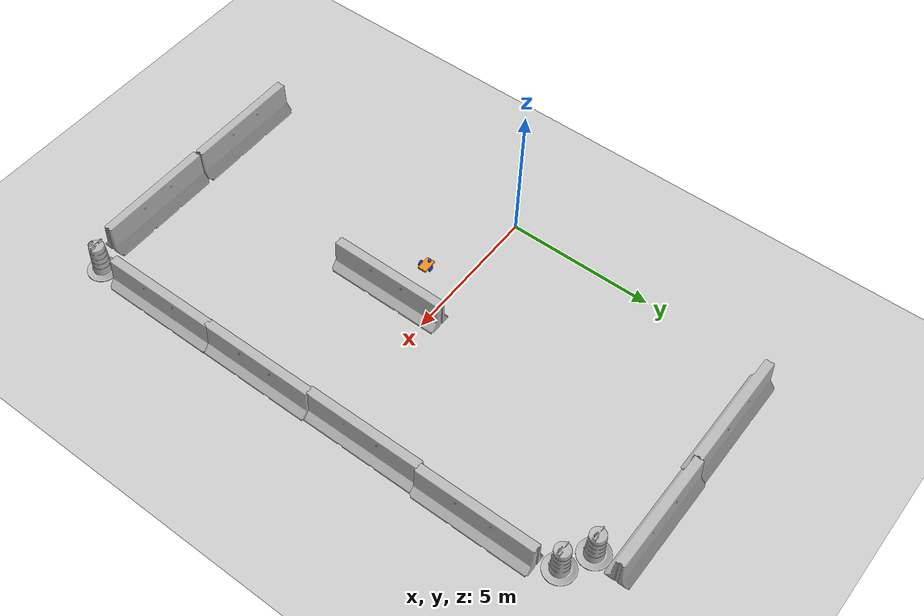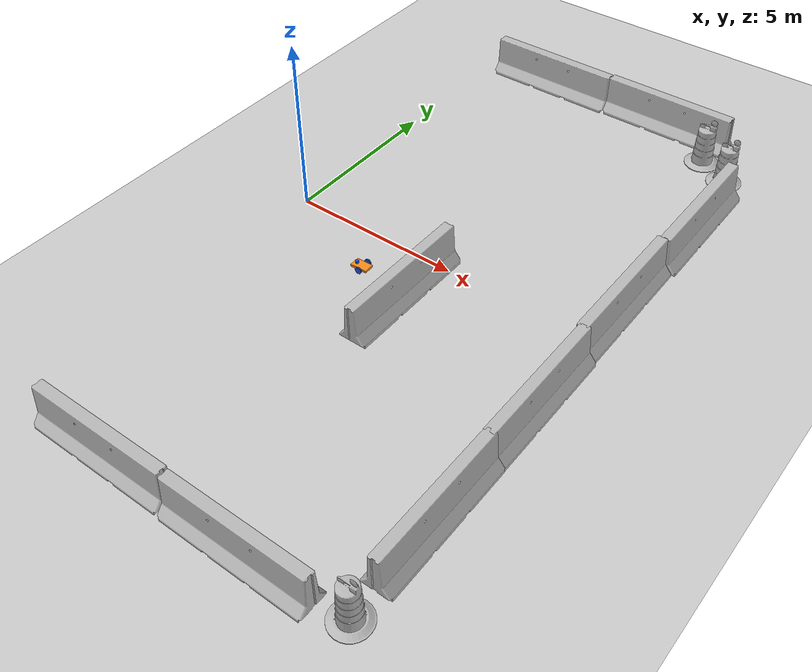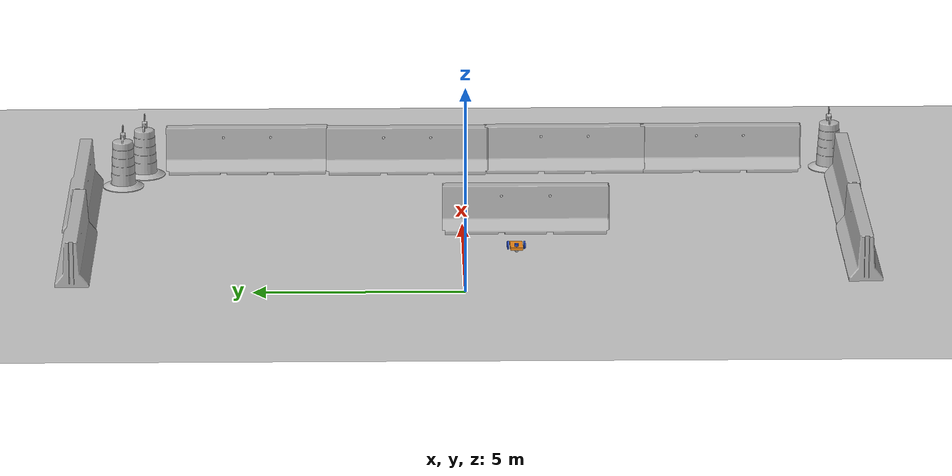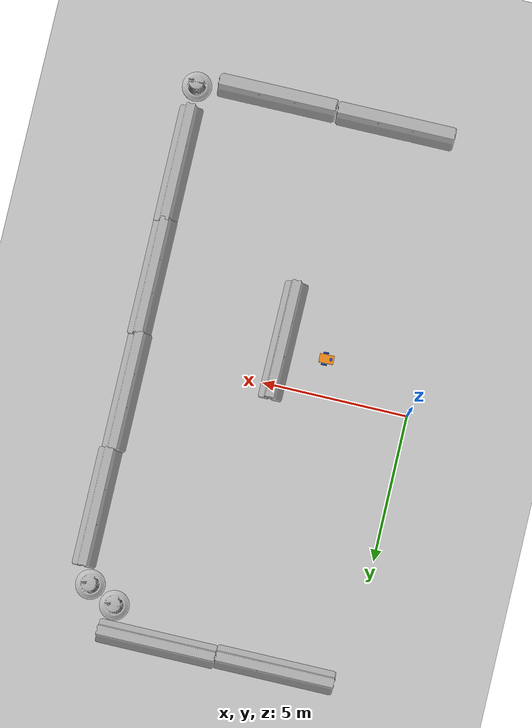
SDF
<sdf version="1.6">
 <world name="default">
  <model name="ground_plane">
   <static>1</static>
   <link name="link">
    <collision name="collision">
     <geometry><plane><normal>0 0 1</normal><size>100 100</size></plane></geometry>
     <surface><friction><ode><mu>100</mu><mu2>50</mu2></ode></friction></surface>
    </collision>
    <visual name="visual">
     <cast_shadows>0</cast_shadows>
     <geometry><plane><normal>0 0 1</normal><size>100 100</size></plane></geometry>
     <material>
      <script><uri>file://media/materials/scripts/gazebo.material</uri><name>Gazebo/Grey</name></script>
     </material>
    </visual>
   </link>
  </model>
  <model name="jersey_barrier_clone_0">
   <static>1</static>
   <link name="link">
    <visual name="visual">
     <geometry><mesh><uri>model://jersey_barrier/meshes/jersey_barrier.dae</uri></mesh></geometry>
    </visual>
    <collision name="upright">
     <pose>0 0 0.5715 0 -0 0</pose>
     <geometry><box><size>4.06542 0.3063 1.143</size></box></geometry>
    </collision>
    <collision name="base">
     <pose>0 0 0.032258 0 -0 0</pose>
     <geometry><box><size>4.06542 0.8107 0.064516</size></box></geometry>
    </collision>
    <collision name="base2">
     <pose>0 0 0.1 0 -0 0</pose>
     <geometry><box><size>4.06542 0.65 0.1</size></box></geometry>
    </collision>
    <collision name="base3">
     <pose>0 0 0.2 0 -0 0</pose>
     <geometry><box><size>4.06542 0.5 0.1</size></box></geometry>
    </collision>
    <collision name="left-angle">
     <pose>0 -0.224 0.2401 0.9 -0 0</pose>
     <geometry><box><size>4.06542 0.5 0.064516</size></box></geometry>
    </collision>
    <collision name="right-angle">
     <pose>0 0.224 0.2401 -0.9 0 0</pose>
     <geometry><box><size>4.06542 0.5 0.064516</size></box></geometry>
    </collision>
   </link>
   <pose>2.39773 9.29085 0 0 -0 0</pose>
  </model>
  <model name="jersey_barrier_clone_1">
   <static>1</static>
   <link name="link">
    <visual name="visual">
     <geometry><mesh><uri>model://jersey_barrier/meshes/jersey_barrier.dae</uri></mesh></geometry>
    </visual>
    <collision name="upright">
     <pose>0 0 0.5715 0 -0 0</pose>
     <geometry><box><size>4.06542 0.3063 1.143</size></box></geometry>
    </collision>
    <collision name="base">
     <pose>0 0 0.032258 0 -0 0</pose>
     <geometry><box><size>4.06542 0.8107 0.064516</size></box></geometry>
    </collision>
    <collision name="base2">
     <pose>0 0 0.1 0 -0 0</pose>
     <geometry><box><size>4.06542 0.65 0.1</size></box></geometry>
    </collision>
    <collision name="base3">
     <pose>0 0 0.2 0 -0 0</pose>
     <geometry><box><size>4.06542 0.5 0.1</size></box></geometry>
    </collision>
    <collision name="left-angle">
     <pose>0 -0.224 0.2401 0.9 -0 0</pose>
     <geometry><box><size>4.06542 0.5 0.064516</size></box></geometry>
    </collision>
    <collision name="right-angle">
     <pose>0 0.224 0.2401 -0.9 0 0</pose>
     <geometry><box><size>4.06542 0.5 0.064516</size></box></geometry>
    </collision>
   </link>
   <pose>6.45464 9.33993 0 0 -0 0</pose>
  </model>
  <model name="jersey_barrier_clone_3">
   <static>1</static>
   <link name="link">
    <visual name="visual">
     <geometry><mesh><uri>model://jersey_barrier/meshes/jersey_barrier.dae</uri></mesh></geometry>
    </visual>
    <collision name="upright">
     <pose>0 0 0.5715 0 -0 0</pose>
     <geometry><box><size>4.06542 0.3063 1.143</size></box></geometry>
    </collision>
    <collision name="base">
     <pose>0 0 0.032258 0 -0 0</pose>
     <geometry><box><size>4.06542 0.8107 0.064516</size></box></geometry>
    </collision>
    <collision name="base2">
     <pose>0 0 0.1 0 -0 0</pose>
     <geometry><box><size>4.06542 0.65 0.1</size></box></geometry>
    </collision>
    <collision name="base3">
     <pose>0 0 0.2 0 -0 0</pose>
     <geometry><box><size>4.06542 0.5 0.1</size></box></geometry>
    </collision>
    <collision name="left-angle">
     <pose>0 -0.224 0.2401 0.9 -0 0</pose>
     <geometry><box><size>4.06542 0.5 0.064516</size></box></geometry>
    </collision>
    <collision name="right-angle">
     <pose>0 0.224 0.2401 -0.9 0 0</pose>
     <geometry><box><size>4.06542 0.5 0.064516</size></box></geometry>
    </collision>
   </link>
   <pose>9.44656 5.35522 0 0 0 -1.56865</pose>
  </model>
  <model name="jersey_barrier_clone_3_clone">
   <static>1</static>
   <link name="link">
    <visual name="visual">
     <geometry><mesh><uri>model://jersey_barrier/meshes/jersey_barrier.dae</uri></mesh></geometry>
    </visual>
    <collision name="upright">
     <pose>0 0 0.5715 0 -0 0</pose>
     <geometry><box><size>4.06542 0.3063 1.143</size></box></geometry>
    </collision>
    <collision name="base">
     <pose>0 0 0.032258 0 -0 0</pose>
     <geometry><box><size>4.06542 0.8107 0.064516</size></box></geometry>
    </collision>
    <collision name="base2">
     <pose>0 0 0.1 0 -0 0</pose>
     <geometry><box><size>4.06542 0.65 0.1</size></box></geometry>
    </collision>
    <collision name="base3">
     <pose>0 0 0.2 0 -0 0</pose>
     <geometry><box><size>4.06542 0.5 0.1</size></box></geometry>
    </collision>
    <collision name="left-angle">
     <pose>0 -0.224 0.2401 0.9 -0 0</pose>
     <geometry><box><size>4.06542 0.5 0.064516</size></box></geometry>
    </collision>
    <collision name="right-angle">
     <pose>0 0.224 0.2401 -0.9 0 0</pose>
     <geometry><box><size>4.06542 0.5 0.064516</size></box></geometry>
    </collision>
   </link>
   <pose>9.3727 1.33119 0 0 0 -1.56865</pose>
  </model>
  <model name="jersey_barrier_clone_3_clone_0">
   <static>1</static>
   <link name="link">
    <visual name="visual">
     <geometry><mesh><uri>model://jersey_barrier/meshes/jersey_barrier.dae</uri></mesh></geometry>
    </visual>
    <collision name="upright">
     <pose>0 0 0.5715 0 -0 0</pose>
     <geometry><box><size>4.06542 0.3063 1.143</size></box></geometry>
    </collision>
    <collision name="base">
     <pose>0 0 0.032258 0 -0 0</pose>
     <geometry><box><size>4.06542 0.8107 0.064516</size></box></geometry>
    </collision>
    <collision name="base2">
     <pose>0 0 0.1 0 -0 0</pose>
     <geometry><box><size>4.06542 0.65 0.1</size></box></geometry>
    </collision>
    <collision name="base3">
     <pose>0 0 0.2 0 -0 0</pose>
     <geometry><box><size>4.06542 0.5 0.1</size></box></geometry>
    </collision>
    <collision name="left-angle">
     <pose>0 -0.224 0.2401 0.9 -0 0</pose>
     <geometry><box><size>4.06542 0.5 0.064516</size></box></geometry>
    </collision>
    <collision name="right-angle">
     <pose>0 0.224 0.2401 -0.9 0 0</pose>
     <geometry><box><size>4.06542 0.5 0.064516</size></box></geometry>
    </collision>
   </link>
   <pose>9.4315 -2.6268 0 0 0 -1.56865</pose>
  </model>
  <model name="jersey_barrier_clone_3_clone_1">
   <static>1</static>
   <link name="link">
    <visual name="visual">
     <geometry><mesh><uri>model://jersey_barrier/meshes/jersey_barrier.dae</uri></mesh></geometry>
    </visual>
    <collision name="upright">
     <pose>0 0 0.5715 0 -0 0</pose>
     <geometry><box><size>4.06542 0.3063 1.143</size></box></geometry>
    </collision>
    <collision name="base">
     <pose>0 0 0.032258 0 -0 0</pose>
     <geometry><box><size>4.06542 0.8107 0.064516</size></box></geometry>
    </collision>
    <collision name="base2">
     <pose>0 0 0.1 0 -0 0</pose>
     <geometry><box><size>4.06542 0.65 0.1</size></box></geometry>
    </collision>
    <collision name="base3">
     <pose>0 0 0.2 0 -0 0</pose>
     <geometry><box><size>4.06542 0.5 0.1</size></box></geometry>
    </collision>
    <collision name="left-angle">
     <pose>0 -0.224 0.2401 0.9 -0 0</pose>
     <geometry><box><size>4.06542 0.5 0.064516</size></box></geometry>
    </collision>
    <collision name="right-angle">
     <pose>0 0.224 0.2401 -0.9 0 0</pose>
     <geometry><box><size>4.06542 0.5 0.064516</size></box></geometry>
    </collision>
   </link>
   <pose>9.44969 -6.53485 0 0 0 -1.56865</pose>
  </model>
  <model name="jersey_barrier_clone_2_clone">
   <static>1</static>
   <link name="link">
    <visual name="visual">
     <geometry><mesh><uri>model://jersey_barrier/meshes/jersey_barrier.dae</uri></mesh></geometry>
    </visual>
    <collision name="upright">
     <pose>0 0 0.5715 0 -0 0</pose>
     <geometry><box><size>4.06542 0.3063 1.143</size></box></geometry>
    </collision>
    <collision name="base">
     <pose>0 0 0.032258 0 -0 0</pose>
     <geometry><box><size>4.06542 0.8107 0.064516</size></box></geometry>
    </collision>
    <collision name="base2">
     <pose>0 0 0.1 0 -0 0</pose>
     <geometry><box><size>4.06542 0.65 0.1</size></box></geometry>
    </collision>
    <collision name="base3">
     <pose>0 0 0.2 0 -0 0</pose>
     <geometry><box><size>4.06542 0.5 0.1</size></box></geometry>
    </collision>
    <collision name="left-angle">
     <pose>0 -0.224 0.2401 0.9 -0 0</pose>
     <geometry><box><size>4.06542 0.5 0.064516</size></box></geometry>
    </collision>
    <collision name="right-angle">
     <pose>0 0.224 0.2401 -0.9 0 0</pose>
     <geometry><box><size>4.06542 0.5 0.064516</size></box></geometry>
    </collision>
   </link>
   <pose>6.70657 -9.54347 0 0 -0 0</pose>
  </model>
  <model name="jersey_barrier_clone_2_clone_0">
   <static>1</static>
   <link name="link">
    <visual name="visual">
     <geometry><mesh><uri>model://jersey_barrier/meshes/jersey_barrier.dae</uri></mesh></geometry>
    </visual>
    <collision name="upright">
     <pose>0 0 0.5715 0 -0 0</pose>
     <geometry><box><size>4.06542 0.3063 1.143</size></box></geometry>
    </collision>
    <collision name="base">
     <pose>0 0 0.032258 0 -0 0</pose>
     <geometry><box><size>4.06542 0.8107 0.064516</size></box></geometry>
    </collision>
    <collision name="base2">
     <pose>0 0 0.1 0 -0 0</pose>
     <geometry><box><size>4.06542 0.65 0.1</size></box></geometry>
    </collision>
    <collision name="base3">
     <pose>0 0 0.2 0 -0 0</pose>
     <geometry><box><size>4.06542 0.5 0.1</size></box></geometry>
    </collision>
    <collision name="left-angle">
     <pose>0 -0.224 0.2401 0.9 -0 0</pose>
     <geometry><box><size>4.06542 0.5 0.064516</size></box></geometry>
    </collision>
    <collision name="right-angle">
     <pose>0 0.224 0.2401 -0.9 0 0</pose>
     <geometry><box><size>4.06542 0.5 0.064516</size></box></geometry>
    </collision>
   </link>
   <pose>2.59616 -9.50928 0 0 -0 0</pose>
  </model>
  <model name="Construction Barrel">
   <link name="link">
    <inertial>
     <pose>0 0 0.4 0 -0 0</pose>
     <mass>500</mass>
     <inertia><ixx>51.2096</ixx><iyy>51.2096</iyy><izz>25</izz><ixy>0</ixy><ixz>0</ixz><iyz>0</iyz></inertia>
    </inertial>
    <collision name="collision">
     <geometry><mesh><uri>model://construction_barrel/meshes/construction_barrel.dae</uri></mesh></geometry>
    </collision>
    <visual name="visual">
     <geometry><mesh><uri>model://construction_barrel/meshes/construction_barrel.dae</uri></mesh></geometry>
    </visual>
   </link>
   <pose>9.07428 7.91775 -1e-06 -8e-06 -2e-06 -0.015856</pose>
  </model>
  <model name="Construction Barrel_0">
   <link name="link">
    <inertial>
     <pose>0 0 0.4 0 -0 0</pose>
     <mass>500</mass>
     <inertia><ixx>51.2096</ixx><iyy>51.2096</iyy><izz>25</izz><ixy>0</ixy><ixz>0</ixz><iyz>0</iyz></inertia>
    </inertial>
    <collision name="collision">
     <geometry><mesh><uri>model://construction_barrel/meshes/construction_barrel.dae</uri></mesh></geometry>
    </collision>
    <visual name="visual">
     <geometry><mesh><uri>model://construction_barrel/meshes/construction_barrel.dae</uri></mesh></geometry>
    </visual>
   </link>
   <pose>8.12821 8.4163 -1e-06 4e-06 -2e-06 -7.6e-05</pose>
  </model>
  <model name="Construction Barrel_3">
   <link name="link">
    <inertial>
     <pose>0 0 0.4 0 -0 0</pose>
     <mass>500</mass>
     <inertia><ixx>51.2096</ixx><iyy>51.2096</iyy><izz>25</izz><ixy>0</ixy><ixz>0</ixz><iyz>0</iyz></inertia>
    </inertial>
    <collision name="collision">
     <geometry><mesh><uri>model://construction_barrel/meshes/construction_barrel.dae</uri></mesh></geometry>
    </collision>
    <visual name="visual">
     <geometry><mesh><uri>model://construction_barrel/meshes/construction_barrel.dae</uri></mesh></geometry>
    </visual>
   </link>
   <pose>9.45355 -9.29437 1e-06 3e-06 2e-06 -8.9e-05</pose>
  </model>
  <model name="jersey_barrier_0_clone_0">
   <static>1</static>
   <link name="link">
    <visual name="visual">
     <geometry><mesh><uri>model://jersey_barrier/meshes/jersey_barrier.dae</uri></mesh></geometry>
    </visual>
    <collision name="upright">
     <pose>0 0 0.5715 0 -0 0</pose>
     <geometry><box><size>4.06542 0.3063 1.143</size></box></geometry>
    </collision>
    <collision name="base">
     <pose>0 0 0.032258 0 -0 0</pose>
     <geometry><box><size>4.06542 0.8107 0.064516</size></box></geometry>
    </collision>
    <collision name="base2">
     <pose>0 0 0.1 0 -0 0</pose>
     <geometry><box><size>4.06542 0.65 0.1</size></box></geometry>
    </collision>
    <collision name="base3">
     <pose>0 0 0.2 0 -0 0</pose>
     <geometry><box><size>4.06542 0.5 0.1</size></box></geometry>
    </collision>
    <collision name="left-angle">
     <pose>0 -0.224 0.2401 0.9 -0 0</pose>
     <geometry><box><size>4.06542 0.5 0.064516</size></box></geometry>
    </collision>
    <collision name="right-angle">
     <pose>0 0.224 0.2401 -0.9 0 0</pose>
     <geometry><box><size>4.06542 0.5 0.064516</size></box></geometry>
    </collision>
   </link>
   <pose>4.63376 -1.53226 0 0 -0 1.56568</pose>
  </model>
  <model name="m2wr">
   <link name="link_chassis">
    <inertial>
     <pose>0.025 0 0.091667 0 -0 0</pose>
     <mass>6</mass>
     <inertia>
      <ixx>0.0430833</ixx>
      <ixy>0</ixy>
      <ixz>0.00625</ixz>
      <iyy>0.1285</iyy>
      <iyz>0</iyz>
      <izz>0.126208</izz>
     </inertia>
    </inertial>
    <collision name="link_chassis_fixed_joint_lump__collision_chassis_collision">
     <geometry><box><size>0.5 0.3 0.07</size></box></geometry>
    </collision>
    <collision name="link_chassis_fixed_joint_lump__caster_front_collision_collision_1">
     <pose>0.35 0 -0.05 0 -0 0</pose>
     <geometry><sphere><radius>0.05</radius></sphere></geometry>
    </collision>
    <collision name="link_chassis_fixed_joint_lump__sensor_laser_collision_2">
     <pose>0.15 0 0.05 0 -0 0</pose>
     <geometry><cylinder><length>0.1</length><radius>0.05</radius></cylinder></geometry>
    </collision>
    <visual name="link_chassis_visual">
     <geometry><box><size>0.5 0.3 0.07</size></box></geometry>
     <material>
      <script><name>Gazebo/Orange</name><uri>file://media/materials/scripts/gazebo.material</uri></script>
     </material>
    </visual>
    <visual name="link_chassis_fixed_joint_lump__caster_front_visual_visual_1">
     <pose>0.2 0 -0.05 0 -0 0</pose>
     <geometry><sphere><radius>0.05</radius></sphere></geometry>
    </visual>
    <visual name="link_chassis_fixed_joint_lump__sensor_laser_visual_2">
     <pose>0.15 0 0.05 0 -0 0</pose>
     <geometry><cylinder><length>0.1</length><radius>0.05</radius></cylinder></geometry>
     <material>
      <script><name>Gazebo/Blue</name><uri>file://media/materials/scripts/gazebo.material</uri></script>
     </material>
    </visual>
    <sensor name="head_hokuyo_sensor" type="ray">
     <visualize>0</visualize>
     <update_rate>20</update_rate>
     <ray>
      <scan>
       <horizontal>
        <samples>720</samples>
        <resolution>1</resolution>
        <min_angle>-1.5708</min_angle>
        <max_angle>1.5708</max_angle>
       </horizontal>
       <vertical><samples>1</samples><min_angle>0</min_angle><max_angle>0</max_angle></vertical>
      </scan>
      <range><min>0.1</min><max>10</max><resolution>0.01</resolution></range>
      <noise><type>gaussian</type><mean>0</mean><stddev>0.01</stddev></noise>
     </ray>
     <plugin name="gazebo_ros_head_hokuyo_controller" filename="libgazebo_ros_laser.so">
      <topicName>/m2wr/laser/scan</topicName>
      <frameName>sensor_laser</frameName>
      <robotNamespace>/</robotNamespace>
     </plugin>
     <pose>0.15 0 0.05 0 -0 0</pose>
    </sensor>
   </link>
   <link name="link_left_wheel">
    <pose>-0.05 -0.2 0 0 -0 0</pose>
    <inertial>
     <pose>0 0 0 -0 1.5707 1.5707</pose>
     <mass>0.2</mass>
     <inertia>
      <ixx>0.000526667</ixx>
      <ixy>0</ixy>
      <ixz>0</ixz>
      <iyy>0.000526667</iyy>
      <iyz>0</iyz>
      <izz>0.001</izz>
     </inertia>
    </inertial>
    <collision name="link_left_wheel_fixed_joint_lump__link_right_wheel_collision_collision">
     <pose>0 0 0 3.14159 1.57079 -1.57089</pose>
     <geometry><cylinder><length>0.04</length><radius>0.1</radius></cylinder></geometry>
    </collision>
    <visual name="link_left_wheel_visual_visual">
     <pose>0 0 0 3.14159 1.57079 -1.57089</pose>
     <geometry><cylinder><length>0.04</length><radius>0.1</radius></cylinder></geometry>
     <material>
      <script><name>Gazebo/Blue</name><uri>file://media/materials/scripts/gazebo.material</uri></script>
     </material>
    </visual>
   </link>
   <joint name="joint_left_wheel" type="revolute">
    <child>link_left_wheel</child>
    <parent>link_chassis</parent>
    <axis>
     <xyz>0 1 0</xyz>
     <limit><lower>-1e+16</lower><upper>1e+16</upper></limit>
     <dynamics><spring_reference>0</spring_reference><spring_stiffness>0</spring_stiffness></dynamics>
     <use_parent_model_frame>1</use_parent_model_frame>
    </axis>
   </joint>
   <link name="link_right_wheel">
    <pose>-0.05 0.2 0 0 -0 0</pose>
    <inertial>
     <pose>0 0 0 -0 1.5707 1.5707</pose>
     <mass>0.2</mass>
     <inertia>
      <ixx>0.000526667</ixx>
      <ixy>0</ixy>
      <ixz>0</ixz>
      <iyy>0.000526667</iyy>
      <iyz>0</iyz>
      <izz>0.001</izz>
     </inertia>
    </inertial>
    <collision name="link_right_wheel_collision_collision">
     <pose>0 0 0 3.14159 1.57079 -1.57089</pose>
     <geometry><cylinder><length>0.04</length><radius>0.1</radius></cylinder></geometry>
    </collision>
    <visual name="link_right_wheel_visual_visual">
     <pose>0 0 0 3.14159 1.57079 -1.57089</pose>
     <geometry><cylinder><length>0.04</length><radius>0.1</radius></cylinder></geometry>
     <material>
      <script><name>Gazebo/Blue</name><uri>file://media/materials/scripts/gazebo.material</uri></script>
     </material>
    </visual>
   </link>
   <joint name="joint_right_wheel" type="revolute">
    <child>link_right_wheel</child>
    <parent>link_chassis</parent>
    <axis>
     <xyz>0 1 0</xyz>
     <limit><lower>-1e+16</lower><upper>1e+16</upper></limit>
     <dynamics><spring_reference>0</spring_reference><spring_stiffness>0</spring_stiffness></dynamics>
     <use_parent_model_frame>1</use_parent_model_frame>
    </axis>
   </joint>
   <static>0</static>
   <plugin name="differential_drive_controller" filename="libgazebo_ros_diff_drive.so">
    <alwaysOn>1</alwaysOn>
    <updateRate>20</updateRate>
    <leftJoint>joint_left_wheel</leftJoint>
    <rightJoint>joint_right_wheel</rightJoint>
    <wheelSeparation>0.4</wheelSeparation>
    <wheelDiameter>0.2</wheelDiameter>
    <torque>0.1</torque>
    <commandTopic>cmd_vel</commandTopic>
    <odometryTopic>odom</odometryTopic>
    <odometryFrame>odom</odometryFrame>
    <robotBaseFrame>link_chassis</robotBaseFrame>
    <robotNamespace>/</robotNamespace>
   </plugin>
   <pose>3.07839 -1.27406 0.1 -5e-06 1.5e-05 -3.11736</pose>
  </model>
 </world>
</sdf>
